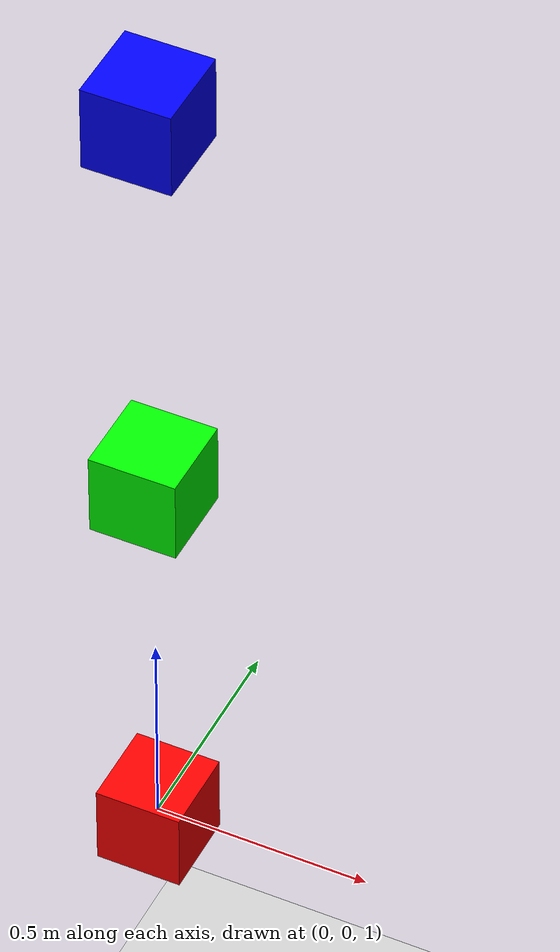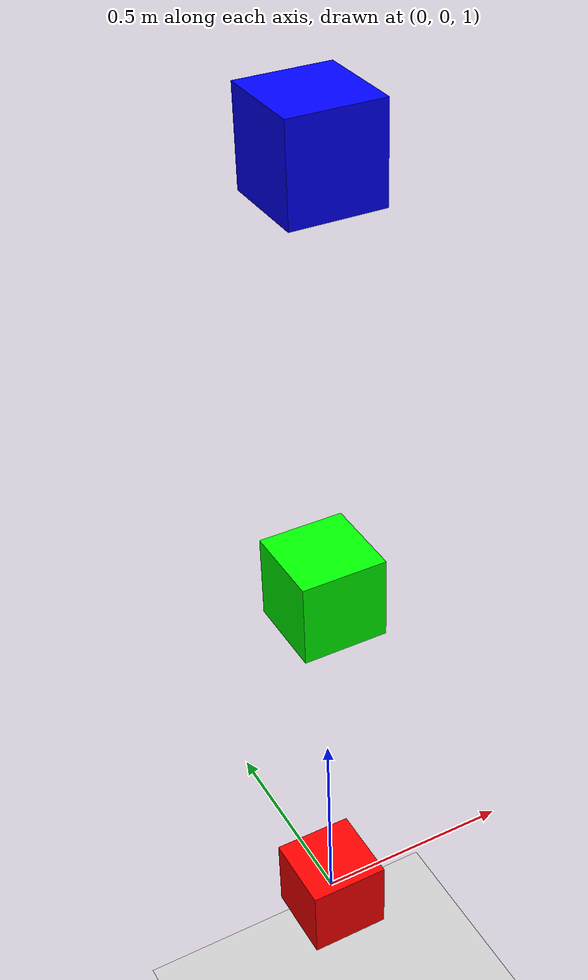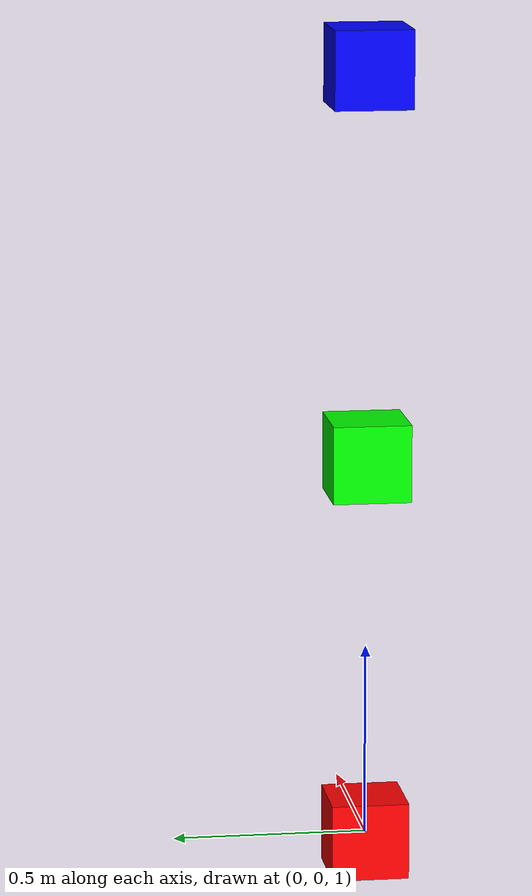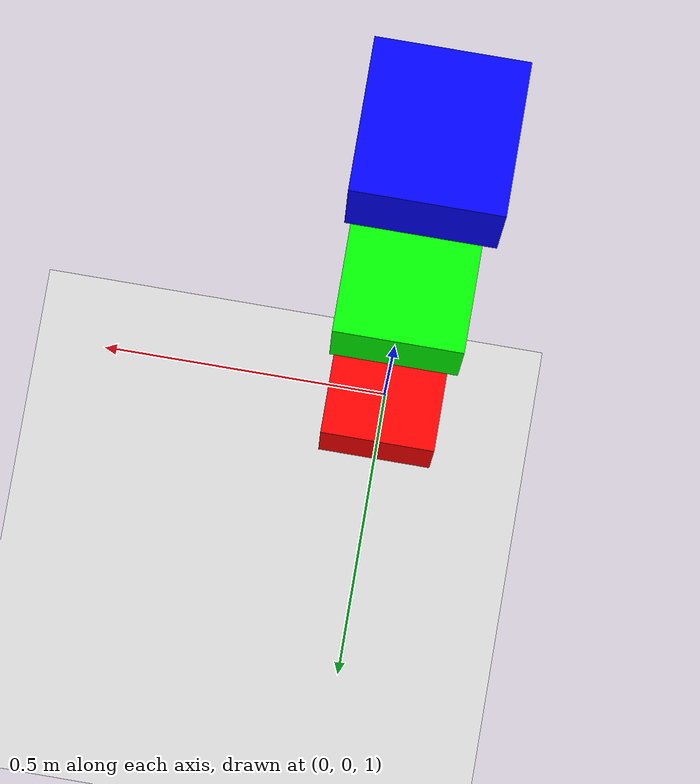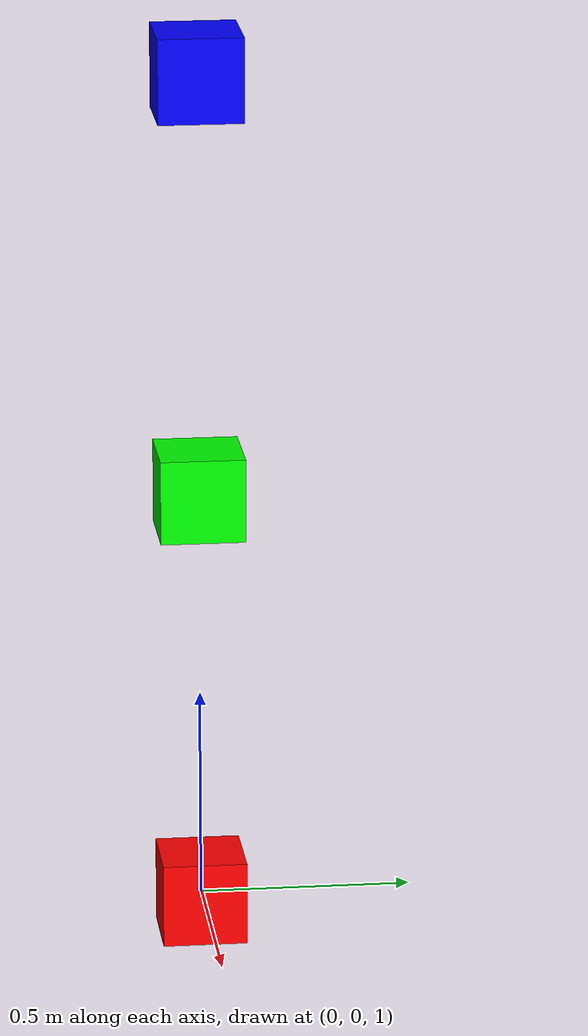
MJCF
<mujoco model="spring_damper_test">
  <extension>
    <plugin plugin="mujoco.passive.spring">
      <instance name="spring1">
        <config key="body1" value="box1"/>
        <config key="body2" value="box2"/>
        <config key="stiffness" value="0"/>
        <config key="damping" value="10"/>
        <config key="restlength" value="0.5"/>
      </instance>

      <instance name="spring2">
        <config key="body1" value="box2"/>
        <config key="body2" value="box3"/>
        <config key="stiffness" value="1000"/>
        <config key="damping" value="10"/>
        <config key="restlength" value="0.5"/>
      </instance>

    </plugin>

    <plugin plugin="sensor_read_publish">
      <instance name="ins">
        <!-- 输出到标准输出（默认） -->
        <!-- 或者输出到文件，指定路径 -->
        <config key="mode" value="file"/>
         <config key="file" value="inspector.log"/>
        <!-- 输出频率（Hz） -->
        <config key="rate" value="10"/>
      </instance>
    </plugin>
  </extension>

  <worldbody>

    <geom name="floor" type="plane" pos="0 0 0" size="2 2 0.1" rgba="0.8 0.8 0.8 1"/>

    <body name="box1" pos="0 0 1">
      <joint type="free"/>
      <geom type="box" size="0.1 0.1 0.1" rgba="1 0 0 1"/>
    </body>

    <body name="box2" pos="0 0 2">
      <joint type="free"/>
      <geom type="box" size="0.1 0.1 0.1" rgba="0 1 0 1"/>
    </body>

    <body name="box3" pos="0 0 3">
      <joint type="free"/>
      <geom type="box" size="0.1 0.1 0.1" rgba="0 0 1 1"/>
    </body>
  </worldbody>

</mujoco>
